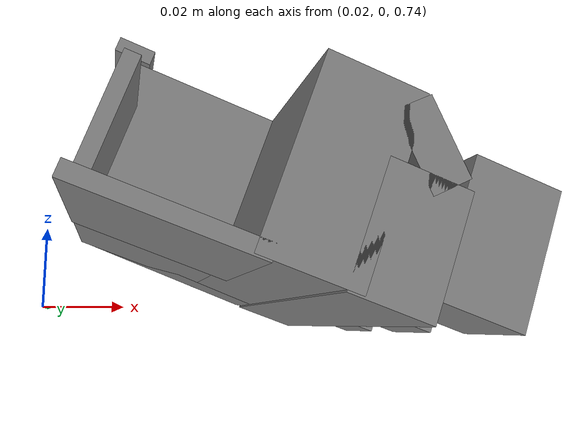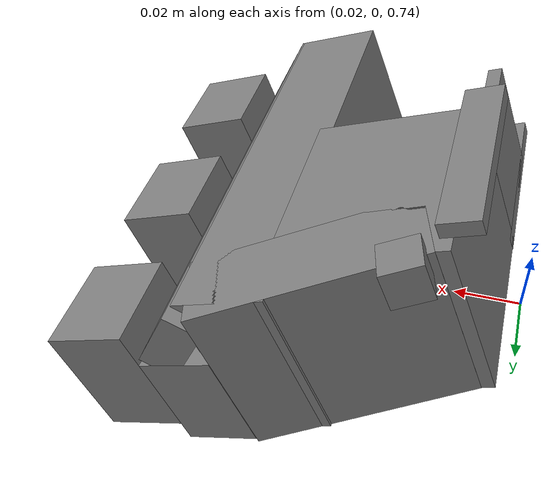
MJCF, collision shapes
<mujoco model="leap_rh_direct">
  <compiler angle="radian" autolimits="true" meshdir=""/>

  <option timestep="0.01" integrator="Euler" iterations="5" ls_iterations="8">
    <flag eulerdamp="disable"/>
  </option>

  <custom>
    <numeric data="30" name="max_contact_points"/>
    <numeric data="12" name="max_geom_pairs"/>
  </custom>

  <asset>
    <material name="leap_black" rgba="0.2 0.2 0.2 1"/>
    <material name="leap_gray" rgba="0.5 0.5 0.5 1"/>
    <mesh name="leap_mount" file="../../../../../mujoco_playground/_src/manipulation/my_leap_hand/xmls/meshes/leap_mount.obj"/>

    <mesh name="palm" file="../../../../../mujoco_menagerie/leap_hand/assets/palm_right.obj"/>
    <mesh name="base" file="../../../../../mujoco_menagerie/leap_hand/assets/base.obj"/>
    <mesh name="proximal" file="../../../../../mujoco_menagerie/leap_hand/assets/proximal.obj"/>
    <mesh name="medial" file="../../../../../mujoco_menagerie/leap_hand/assets/medial.obj"/>
    <mesh name="distal" file="../../../../../mujoco_menagerie/leap_hand/assets/distal.obj"/>
    <mesh name="tip" file="../../../../../mujoco_menagerie/leap_hand/assets/tip.obj"/>
    <mesh name="thumb_base" file="../../../../../mujoco_menagerie/leap_hand/assets/thumb_base.obj"/>
    <mesh name="thumb_proximal" file="../../../../../mujoco_menagerie/leap_hand/assets/thumb_proximal.obj"/>
    <mesh name="thumb_distal" file="../../../../../mujoco_menagerie/leap_hand/assets/thumb_distal.obj"/>
    <mesh name="thumb_tip" file="../../../../../mujoco_menagerie/leap_hand/assets/thumb_tip.obj"/>
  </asset>

  <default>
    <default class="leap_rh">
      <geom group="3" friction="0.2" solref="0.02 1.5" solimp="0.9 0.99 0.001"/>
      <default class="leap_visual">
        <geom group="2" type="mesh" contype="0" conaffinity="0" density="0" material="leap_black"/>
      </default>
      <default class="tip">
        <geom size="0.01 0.012 0.016" pos="-0.0012969 -0.0335524 0.0145207" quat="0.703552 0.709596 -0.0292107 -0.0252203" type="box" friction="0.7 0.05 0.0002" rgba=".5 .5 .5 .3"/>
      </default>
      <default class="thumb_tip">
        <geom size="0.01 0.012 0.016" pos="-0.00127744 -0.0455619 -0.0144774" quat="0.708101 0.705072 -0.0294902 -0.024426" type="box" friction="0.7 0.05 0.0002" rgba=".5 .5 .5 .3"/>
      </default>

      <position kp="3.0" inheritrange="1"/>
      <joint axis="0 0 -1" damping="0.2" armature="0.00149376" actuatorfrcrange="-0.2196 0.2196" frictionloss="0.02"/>

      <default class="mcp">
        <joint range="-0.314 2.23"/>
      </default>
      <default class="rot">
        <joint range="-1.047 1.047"/>
      </default>
      <default class="pip">
        <joint range="-0.506 1.885"/>
      </default>
      <default class="dip">
        <joint range="-0.366 2.042"/>
      </default>
      <default class="thumb_cmc">
        <joint range="-0.349 2.094"/>
      </default>
      <default class="thumb_axl">
        <joint range="-0.349 2.094"/>
      </default>
      <default class="thumb_mcp">
        <joint range="-0.47 2.443"/>
      </default>
      <default class="thumb_ipl">
        <joint range="-1.34 1.88"/>
      </default>

    </default>
  </default>

  <contact>
    <exclude body1="palm" body2="if_bs"/>
    <exclude body1="palm" body2="mf_bs"/>
    <exclude body1="palm" body2="rf_bs"/>
    <exclude body1="palm" body2="th_mp"/>

    <exclude body1="palm" body2="if_px"/>
    <exclude body1="palm" body2="mf_px"/>
    <exclude body1="palm" body2="rf_px"/>
    <exclude body1="palm" body2="th_bs"/>

    <exclude body1="palm" body2="if_md"/>
    <exclude body1="palm" body2="mf_md"/>
    <exclude body1="palm" body2="rf_md"/>
    <exclude body1="palm" body2="th_px"/>

    <exclude body1="leap_mount" body2="if_bs"/>
    <exclude body1="leap_mount" body2="mf_bs"/>
    <exclude body1="leap_mount" body2="rf_bs"/>
    <exclude body1="leap_mount" body2="th_mp"/>

    <exclude body1="leap_mount" body2="if_px"/>
    <exclude body1="leap_mount" body2="mf_px"/>
    <exclude body1="leap_mount" body2="rf_px"/>
    <exclude body1="leap_mount" body2="th_bs"/>

    <exclude body1="leap_mount" body2="if_md"/>
    <exclude body1="leap_mount" body2="mf_md"/>
    <exclude body1="leap_mount" body2="rf_md"/>
    <exclude body1="leap_mount" body2="th_px"/>

    <exclude body1="if_bs" body2="mf_bs"/>
    <exclude body1="if_bs" body2="rf_bs"/>
    <exclude body1="mf_bs" body2="rf_bs"/>

    <exclude body1="th_mp" body2="if_bs"/>
    <exclude body1="th_mp" body2="mf_bs"/>
    <exclude body1="th_mp" body2="rf_bs"/>
  </contact>

  <worldbody>
    <light name="leap_spotlight" mode="targetbodycom" target="palm" pos="3 0 4"/>
    <!-- Directly-controlled LEAP root: 6 joints on leap_mount, no freejoint -->
    <body name="leap_mount" pos="0 0 0.8" quat="1 0 0 0" childclass="leap_rh">
      <inertial mass="0.8" diaginertia="0.01 0.01 0.01" pos="0 0 0"/>
      <!-- 6-DoF joints (PD via P + joint damping + armature) -->
      <joint name="lm_x" type="slide" axis="1 0 0" range="-1 1" damping="2.0" armature="0.01"/>
      <joint name="lm_y" type="slide" axis="0 1 0" range="-1 1" damping="2.0" armature="0.01"/>
      <joint name="lm_z" type="slide" axis="0 0 1" range="0 1.5" damping="2.5" armature="0.015"/>
      <joint name="lm_yaw"   type="hinge" axis="0 0 1" range="-3.1416 3.1416" damping="1.0" armature="0.005"/>
      <joint name="lm_pitch" type="hinge" axis="0 1 0" range="-1.57 1.57" damping="1.0" armature="0.005"/>
      <joint name="lm_roll"  type="hinge" axis="1 0 0" range="-1.57 1.57" damping="1.0" armature="0.005"/>

      <geom name="leap_mount_visual" pos="0 0 0" quat="1 0 0 0" class="leap_visual" mesh="leap_mount"/>
      <geom name="leap_mount_collision_0" size="0.002 0.025 0.005" pos="0.0405 0.02 0.009" quat="0.57346234 0 0.81923192 0" type="box"/>
      <geom name="leap_mount_collision_1" size="0.005 0.005 0.005" pos="0.05 0.053 0.002" quat="0.4987168 0.64994038 -0.34910175 0.45495826" type="box"/>
      <site name="grasp_site" pos="0.11 0.0 0.03" group="4"/>
      <!-- The rest of the hand structure (palm and fingers) copied from leap_rh_mjx.xml -->
      <body name="palm" pos="0.124 -0.0305 -0.06045" quat="0 1 0 -0.175">
        <inertial pos="-0.049542 -0.042914 -0.010227" quat="0.565586 0.427629 -0.574956 0.408254" mass="0.237" diaginertia="0.000407345 0.000304759 0.000180736"/>
        <geom name="palm_visual" pos="-0.02 0.02575 -0.0347" quat="1 0 0 0" class="leap_visual" mesh="palm"/>
        <geom name="palm_collision_1" size="0.011 0.013 0.017" pos="-0.009 0.008 -0.011" type="box"/>
        <geom name="palm_collision_2" size="0.011 0.013 0.017" pos="-0.009 -0.037 -0.011" type="box"/>
        <geom name="palm_collision_3" size="0.011 0.013 0.017" pos="-0.009 -0.082 -0.011" type="box"/>
        <geom name="palm_collision_4" size="0.029 0.01 0.023" pos="-0.066 -0.078 -0.0115" quat="0.989016 0 0 -0.147806" type="box"/>
        <geom name="palm_collision_5" size="0.01 0.06 0.015" pos="-0.03 -0.035 -0.003" type="box"/>
        <geom name="palm_collision_6" size="0.005 0.06 0.01" pos="-0.032 -0.035 -0.024" quat="0.923956 0 0.382499 0" type="box"/>
        <geom name="palm_collision_7" size="0.012 0.058 0.023" pos="-0.048 -0.033 -0.0115" type="box"/>
        <geom name="palm_collision_8" size="0.022 0.026 0.023" pos="-0.078 -0.053 -0.0115" type="box"/>
        <geom name="palm_collision_9" size="0.002 0.018 0.017" pos="-0.098 -0.009 -0.006" type="box"/>
        <geom name="palm_collision_10" size="0.022 0.028 0.002" pos="-0.078 -0.003 0.01" type="box"/>
        <!-- ... Remaining fingers copied unchanged ... -->
      </body>
    </body>
  </worldbody>

  <actuator>
    <!-- 6-DoF base actuators on leap_mount (higher kp for stiff PD) -->
    <position name="lm_act_x"     joint="lm_x"     kp="200" forcerange="-600 600"/>
    <position name="lm_act_y"     joint="lm_y"     kp="200" forcerange="-600 600"/>
    <position name="lm_act_z"     joint="lm_z"     kp="200" forcerange="-600 600"/>
    <position name="lm_act_yaw"   joint="lm_yaw"   kp="80"  forcerange="-250 250"/>
    <position name="lm_act_pitch" joint="lm_pitch" kp="80"  forcerange="-250 250"/>
    <position name="lm_act_roll"  joint="lm_roll"  kp="80"  forcerange="-250 250"/>

    <!-- Finger actuators (same as leap_rh_mjx.xml) -->
    <position name="if_mcp_act" joint="if_mcp" class="mcp"/>
    <position name="if_rot_act" joint="if_rot" class="rot"/>
    <position name="if_pip_act" joint="if_pip" class="pip"/>
    <position name="if_dip_act" joint="if_dip" class="dip"/>
    <position name="mf_mcp_act" joint="mf_mcp" class="mcp"/>
    <position name="mf_rot_act" joint="mf_rot" class="rot"/>
    <position name="mf_pip_act" joint="mf_pip" class="pip"/>
    <position name="mf_dip_act" joint="mf_dip" class="dip"/>
    <position name="rf_mcp_act" joint="rf_mcp" class="mcp"/>
    <position name="rf_rot_act" joint="rf_rot" class="rot"/>
    <position name="rf_pip_act" joint="rf_pip" class="pip"/>
    <position name="rf_dip_act" joint="rf_dip" class="dip"/>
    <position name="th_cmc_act" joint="th_cmc" class="thumb_cmc"/>
    <position name="th_axl_act" joint="th_axl" class="thumb_axl"/>
    <position name="th_mcp_act" joint="th_mcp" class="thumb_mcp"/>
    <position name="th_ipl_act" joint="th_ipl" class="thumb_ipl"/>
  </actuator>
</mujoco>
